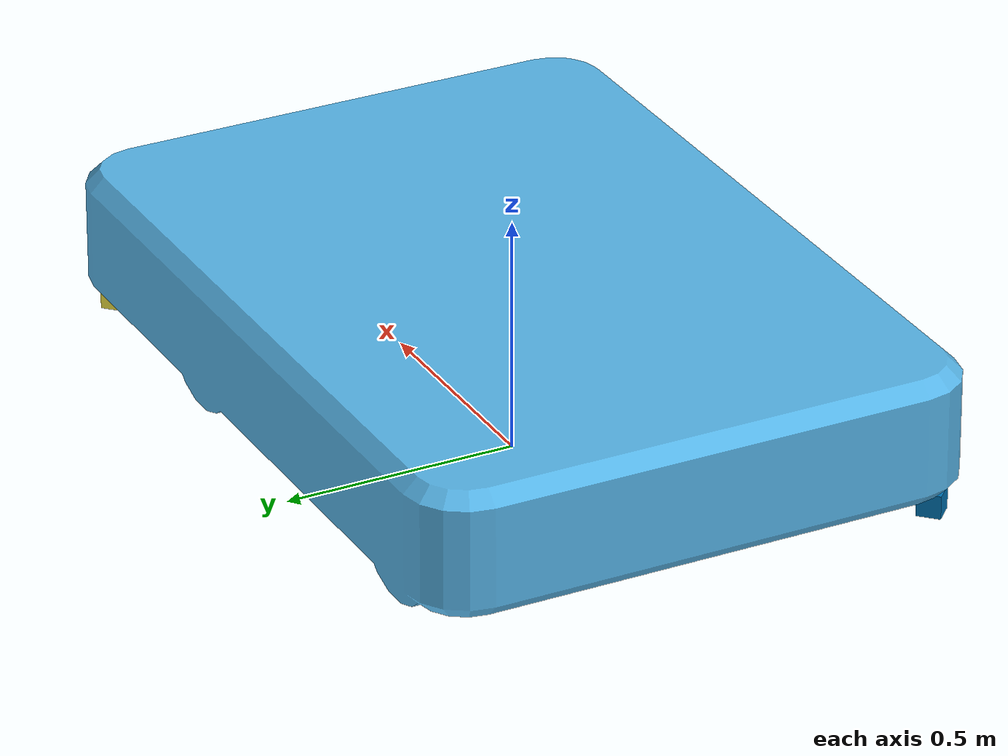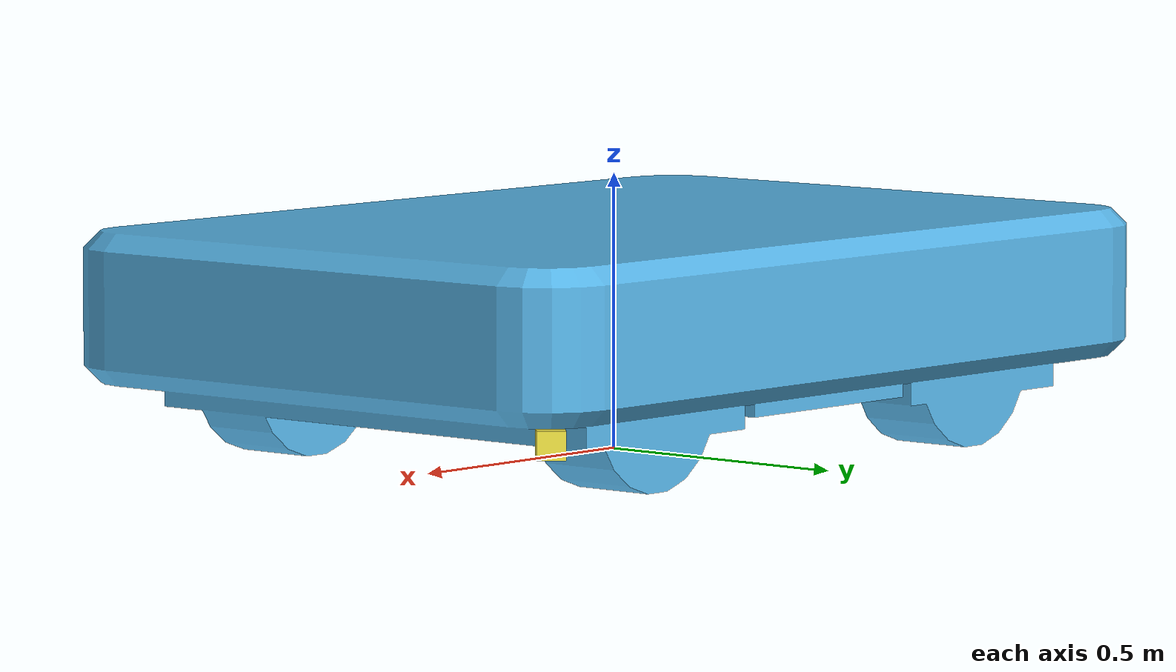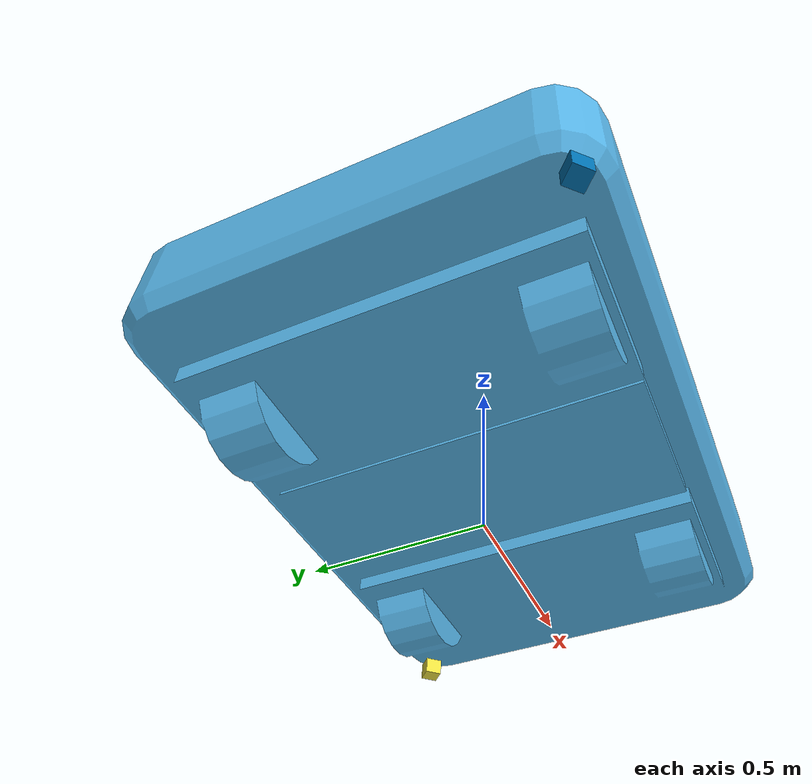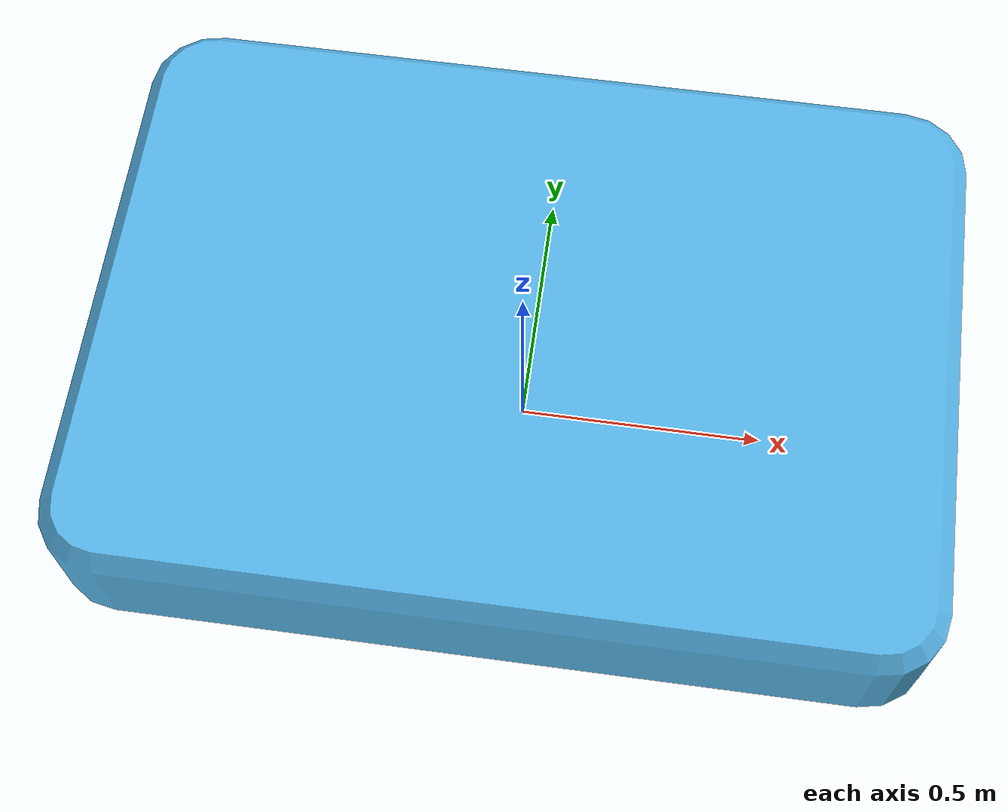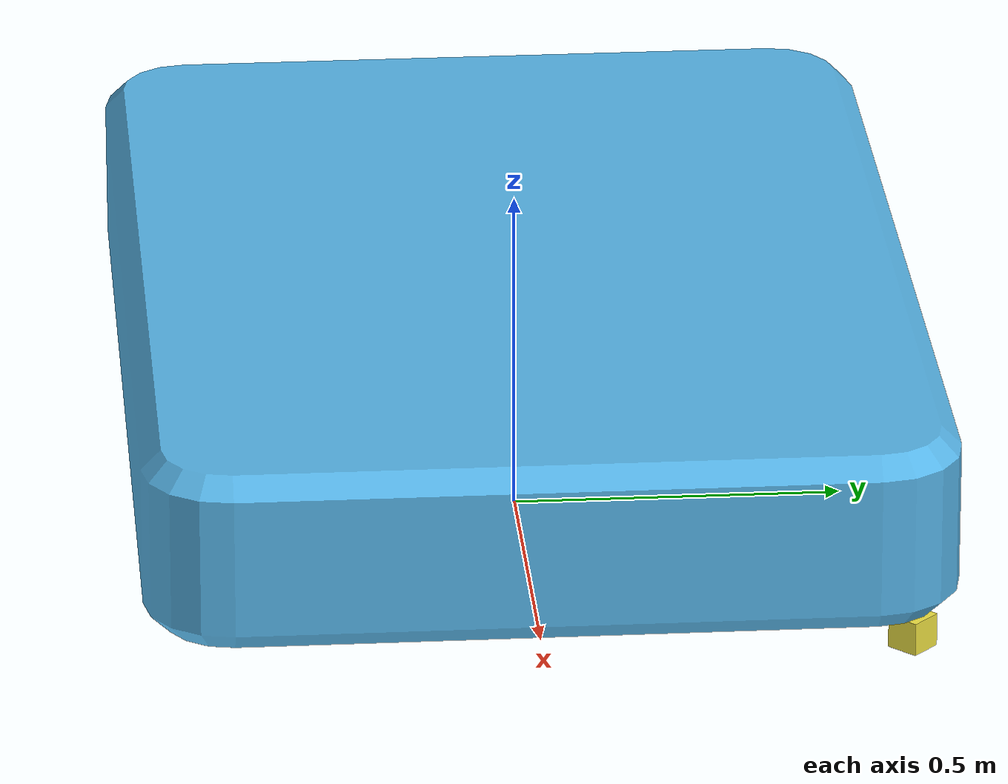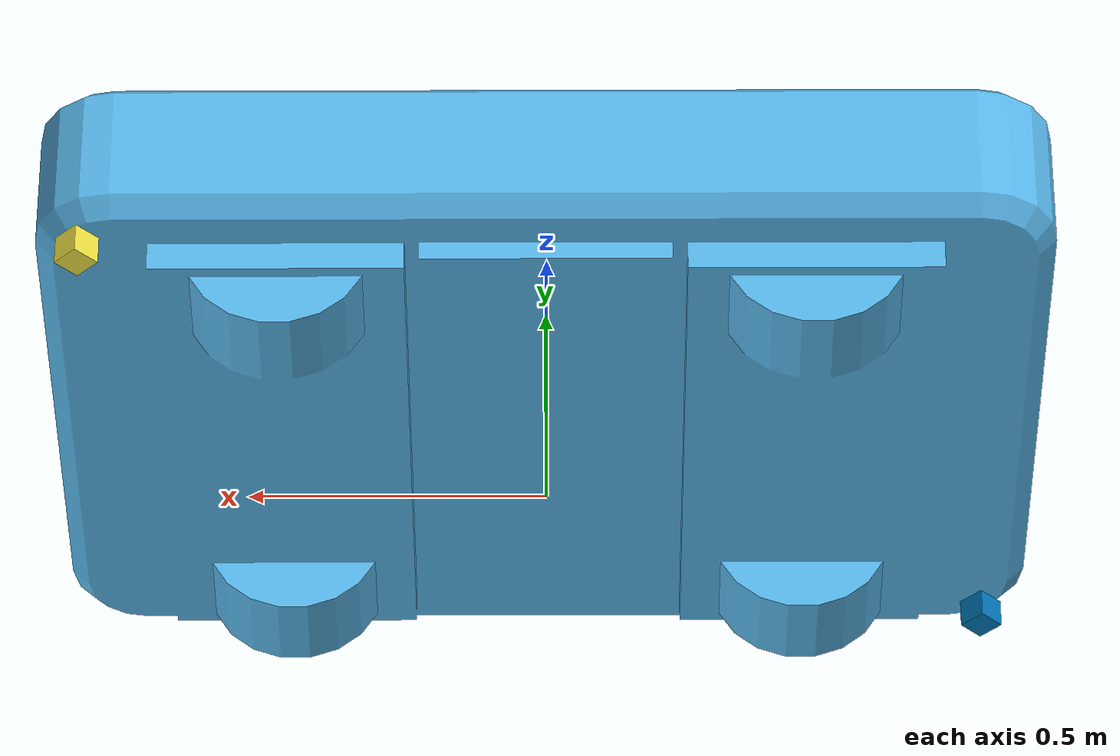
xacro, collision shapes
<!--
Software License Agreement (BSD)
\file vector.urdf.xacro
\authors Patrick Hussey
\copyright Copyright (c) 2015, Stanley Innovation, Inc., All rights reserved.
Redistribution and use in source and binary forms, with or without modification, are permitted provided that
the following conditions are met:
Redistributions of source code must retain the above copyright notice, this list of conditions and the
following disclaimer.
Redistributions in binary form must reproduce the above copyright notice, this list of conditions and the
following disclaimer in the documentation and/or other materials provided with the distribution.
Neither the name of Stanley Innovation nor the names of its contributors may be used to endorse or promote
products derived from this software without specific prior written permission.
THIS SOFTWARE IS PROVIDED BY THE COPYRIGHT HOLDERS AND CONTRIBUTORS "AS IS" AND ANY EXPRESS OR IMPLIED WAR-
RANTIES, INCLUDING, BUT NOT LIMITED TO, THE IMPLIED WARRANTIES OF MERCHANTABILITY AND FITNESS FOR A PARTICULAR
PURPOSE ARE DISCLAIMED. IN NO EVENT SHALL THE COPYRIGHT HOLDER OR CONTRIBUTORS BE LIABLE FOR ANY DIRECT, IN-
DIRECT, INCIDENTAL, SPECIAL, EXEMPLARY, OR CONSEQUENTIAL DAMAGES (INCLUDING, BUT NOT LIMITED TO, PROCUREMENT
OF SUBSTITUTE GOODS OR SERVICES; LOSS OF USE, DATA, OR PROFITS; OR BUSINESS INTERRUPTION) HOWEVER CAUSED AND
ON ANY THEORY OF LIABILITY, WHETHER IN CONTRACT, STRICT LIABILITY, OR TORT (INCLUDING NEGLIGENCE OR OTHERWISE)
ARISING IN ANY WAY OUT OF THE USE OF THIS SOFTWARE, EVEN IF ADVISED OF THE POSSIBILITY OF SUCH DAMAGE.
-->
<?xml version="1.0"?>
<robot name="mav3k" xmlns:xacro="http://ros.org/wiki/xacro">

    <!-- Included URDF/XACRO Files -->

    <xacro:include filename="$(find mav3k_description)/urdf/vector_components/mav3k_base.urdf.xacro" />
    <xacro:include filename="$(find mav3k_description)/urdf/mav3k_accessories.urdf.xacro" />

    <xacro:property name="M_PI" value="3.14159"/>
	<gazebo>
	    <plugin name="gazebo_ros_control" filename="libgazebo_ros_control.so">
	      <robotNamespace>/</robotNamespace>
	      <legacyModeNS>true</legacyModeNS>
	    </plugin>
	    <plugin name="object_controller" filename="libgazebo_ros_force_based_move_omni.so">
            <commandTopic>/vector/cmd_vel</commandTopic>
            <odometryTopic>/vector/odometry/local_filtered</odometryTopic>
            <odometryFrame>odom</odometryFrame>
            <odometryRate>100.0</odometryRate>
            <robotBaseFrame>base_link</robotBaseFrame>
            <publishOdometryTf>true</publishOdometryTf>
            <yaw_velocity_p_gain>8000.0</yaw_velocity_p_gain>
            <x_velocity_p_gain>10000.0</x_velocity_p_gain>
            <y_velocity_p_gain>10000.0</y_velocity_p_gain>
	    </plugin>
	</gazebo>

    <xacro:mav3k_base/>

    <!-- Setup any accessories defined in the environment -->
    <xacro:mav3k_accessories/>

</robot>

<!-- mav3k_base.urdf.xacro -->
<robot name="mav3k_base" xmlns:xacro="http://ros.org/wiki/xacro">

    <xacro:macro name="box_inertia" params="m x y z">
        <inertia ixx="${m*(y*y+z*z)/12}" ixy="0" ixz="0"
                 iyy="${m*(x*x+z*z)/12}" iyz="0"
                 izz="${m*(x*x+z*z)/12}" />
    </xacro:macro>

    <!-- Wheel Mounting Positions and Properties-->
	<xacro:macro name="mav3k_base">

        <!-- Base link is the center of the robot's chassis between the motors projected on the ground -->
        <link name="base_link"/>

        <joint name="base_chassis_joint" type="fixed">
            <origin xyz="0 0 0.1524" rpy="0 0 0" />
            <parent link="base_link" />
            <child link="base_chassis_link" />
        </joint>

        <link name="base_chassis_link">
	    <inertial>
		    <mass value="450" />
		    <origin xyz="0.0 0.0 0.07" rpy="0 0 0"/>
		    <inertia ixx="100"  ixy="0" ixz="0"
                         iyx="0" iyy="200" iyz="0"
                         izx="0" izy="0"  izz="300" />
	    </inertial>
            <collision>
			    <geometry>
				    <mesh filename="package://mav3k_description/meshes/vector_components/collision/mav3k_base_collision.stl" />
			    </geometry>
			</collision>
			<visual>
				<origin xyz="0 0 0" rpy="0 0 0" />
			    <geometry>
				    <mesh filename="package://mav3k_description/meshes/vector_components/visual/mav3k_base.dae" />
			    </geometry>
			</visual>
		</link>

        <gazebo reference="base_chassis_link">
			<mu1 value="0.3"/>
			<mu2 value="0.3"/>
			<kp value="10000000.0" />
			<kd value="1.0" />
			<fdir1 value="1 0 0"/>
        </gazebo>

    </xacro:macro>

</robot>

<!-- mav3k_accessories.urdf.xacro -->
<robot name="mav3k_accessories" xmlns:xacro="http://ros.org/wiki/xacro">
    <xacro:include filename="$(find mav3k_description)/urdf/sensors/hokuyo_uam_05lp.urdf.xacro"/>

    <xacro:property name="M_PI" value="3.14159"/>

    <xacro:macro name="mav3k_accessories">

        <link name="sic_imu_frame"/>
        <joint name="sic_imu_joint" type="fixed">
            <origin xyz="0.0 0.0 0.1150661" rpy="0 0 0" />
            <parent link="base_chassis_link" />
            <child link="sic_imu_frame" />
        </joint>
        <gazebo>
            <plugin name="sic_imu_controller" filename="libhector_gazebo_ros_imu.so">
                <alwaysOn>1</alwaysOn>
                <updateRate>50.0</updateRate>
                <bodyName>sic_imu_frame</bodyName>
                <topicName>/vector/feedback/sic_imu</topicName>
                <accelDrift>0.0005 0.0005 0.0005</accelDrift>
                <accelGaussianNoise>0.0005 0.0005 0.0005</accelGaussianNoise>
                <rateDrift>0.0005 0.0005 0.0005</rateDrift>
                <rateGaussianNoise>0.00005 0.00005 0.00005 </rateGaussianNoise>
                <headingDrift>0.00005</headingDrift>
                <headingGaussianNoise>0.00005</headingGaussianNoise>
            </plugin>
        </gazebo>

        <xacro:hokuyo_uam_05lp laser_prefix="front" parent="base_chassis_link">
            <origin xyz="0.761493 0.520199 -0.033281" rpy="${M_PI} 0 ${M_PI/4}"/>
        </xacro:hokuyo_uam_05lp>

        <xacro:hokuyo_uam_05lp laser_prefix="rear" parent="base_chassis_link">
            <origin xyz="-0.761493 -0.520199 -0.033281" rpy="${M_PI} 0 -${3*M_PI/4}" />
        </xacro:hokuyo_uam_05lp>

        <link name="base_laser_link"/>
        <joint name="base_laser_joint" type="fixed">
            <origin xyz="0 0 -0.033281" rpy="0 0 0" />
            <parent link="base_chassis_link" />
            <child link="base_laser_link" />
        </joint>

    </xacro:macro>
</robot>

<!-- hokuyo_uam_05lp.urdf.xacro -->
<robot xmlns:xacro="http://ros.org/wiki/xacro" name="hokuyo_uam_05lp">

    <xacro:macro name="hokuyo_uam_05lp" params="laser_prefix parent *origin">
        <joint name="${laser_prefix}_laser_joint" type="fixed">
            <xacro:insert_block name="origin" />
            <parent link="${parent}" />
            <child link="${laser_prefix}_laser_link" />
        </joint>

        <link name="${laser_prefix}_laser_link">
            <visual>
                <geometry>
                    <mesh filename="package://mav3k_description/meshes/sensors/visual/hokuyo_uam_05lp.dae" />
                </geometry>
            </visual>
            <collision>
                <geometry>
                    <box size="0.05 0.05 0.05"/>
                </geometry>
            </collision>
        </link>

        <gazebo reference="${laser_prefix}_laser_link">
            <sensor type="ray" name="${laser_prefix}_laser">
                <pose>0 0 0 0 0 0</pose>
                <visualize>false</visualize>
                <update_rate>33.333</update_rate>
                <ray>
                    <scan>
                        <horizontal>
                        <samples>720</samples>
                        <resolution>1</resolution>
                        <min_angle>-2.356</min_angle>
                        <max_angle>2.356</max_angle>
                        </horizontal>
                    </scan>
                    <range>
                        <min>0.06</min>
                        <max>20.0</max>
                        <resolution>0.01</resolution>
                    </range>
                    <noise>
                        <type>gaussian</type>
                        <mean>0.0</mean>
                        <stddev>0.01</stddev>
                    </noise>
                </ray>
                <plugin name="${laser_prefix}_laser_node" filename="libgazebo_ros_laser.so">
                    <topicName>/vector/${laser_prefix}_scan</topicName>
                    <frameName>${laser_prefix}_laser_link</frameName>
                </plugin>
            </sensor>
        </gazebo>
    </xacro:macro>
</robot>
